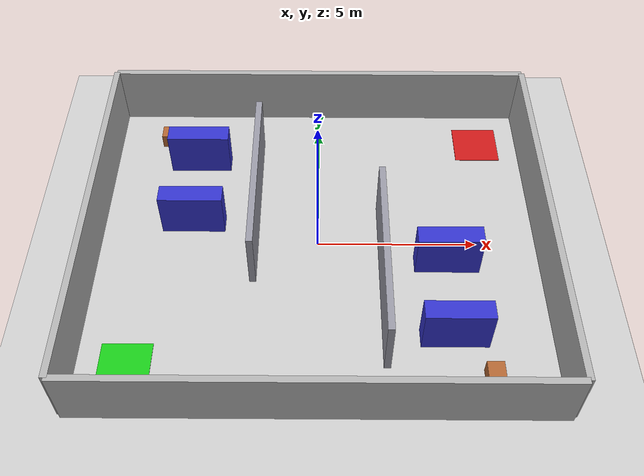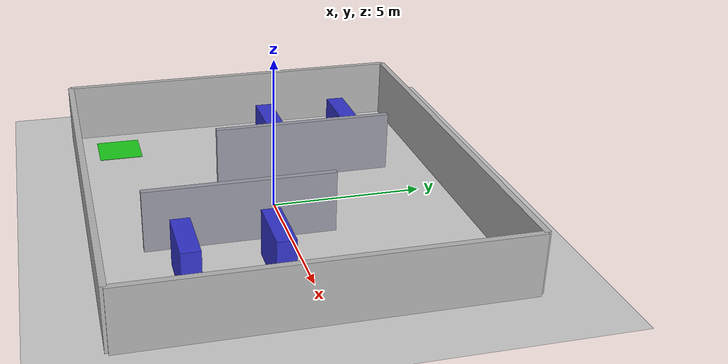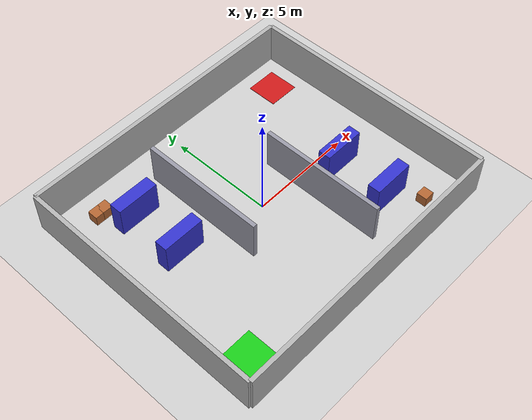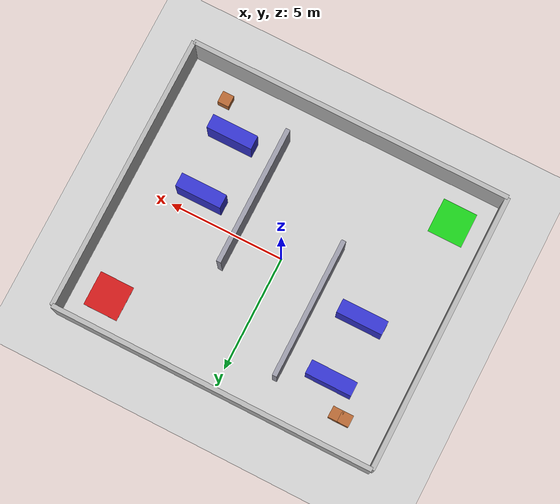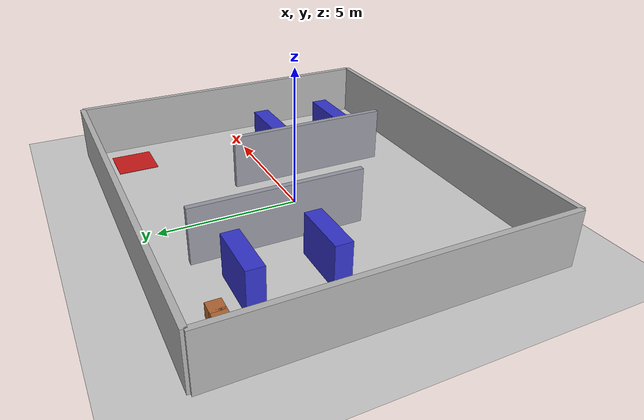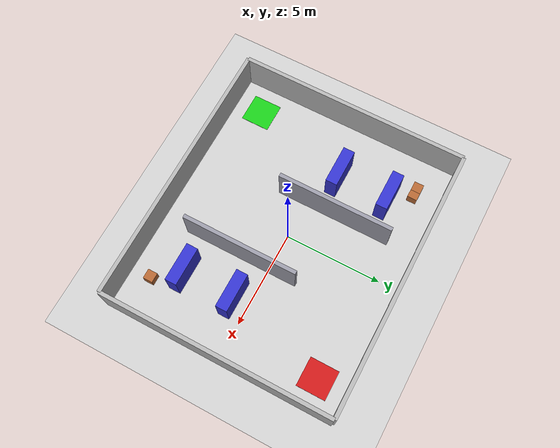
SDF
<?xml version="1.0" ?>
<sdf version="1.6">
  <world name="factory_world">

    <include>
      <uri>model://ground_plane</uri>
    </include>

    <include>
      <uri>model://sun</uri>
    </include>

    <!-- ================= LIGHT ================= -->
    <scene>
      <ambient>0.5 0.5 0.5 1</ambient>
      <background>0.7 0.7 0.7 1</background>
    </scene>

    <!-- ================= MAIN FLOOR AREA ================= -->
    <!-- outer walls -->
    <model name="wall_north">
      <static>true</static>
      <pose>0 6 1 0 0 0</pose>
      <link name="link">
        <collision name="collision">
          <geometry>
            <box><size>14 0.2 2</size></box>
          </geometry>
        </collision>
        <visual name="visual">
          <geometry>
            <box><size>14 0.2 2</size></box>
          </geometry>
          <material>
            <ambient>0.7 0.7 0.7 1</ambient>
            <diffuse>0.7 0.7 0.7 1</diffuse>
          </material>
        </visual>
      </link>
    </model>

    <model name="wall_south">
      <static>true</static>
      <pose>0 -6 1 0 0 0</pose>
      <link name="link">
        <collision name="collision">
          <geometry>
            <box><size>14 0.2 2</size></box>
          </geometry>
        </collision>
        <visual name="visual">
          <geometry>
            <box><size>14 0.2 2</size></box>
          </geometry>
          <material>
            <ambient>0.7 0.7 0.7 1</ambient>
            <diffuse>0.7 0.7 0.7 1</diffuse>
          </material>
        </visual>
      </link>
    </model>

    <model name="wall_east">
      <static>true</static>
      <pose>7 0 1 0 0 0</pose>
      <link name="link">
        <collision name="collision">
          <geometry>
            <box><size>0.2 12 2</size></box>
          </geometry>
        </collision>
        <visual name="visual">
          <geometry>
            <box><size>0.2 12 2</size></box>
          </geometry>
          <material>
            <ambient>0.7 0.7 0.7 1</ambient>
            <diffuse>0.7 0.7 0.7 1</diffuse>
          </material>
        </visual>
      </link>
    </model>

    <model name="wall_west">
      <static>true</static>
      <pose>-7 0 1 0 0 0</pose>
      <link name="link">
        <collision name="collision">
          <geometry>
            <box><size>0.2 12 2</size></box>
          </geometry>
        </collision>
        <visual name="visual">
          <geometry>
            <box><size>0.2 12 2</size></box>
          </geometry>
          <material>
            <ambient>0.7 0.7 0.7 1</ambient>
            <diffuse>0.7 0.7 0.7 1</diffuse>
          </material>
        </visual>
      </link>
    </model>

    <!-- ================= INNER WALLS / CORRIDORS ================= -->
    <model name="inner_wall_1">
      <static>true</static>
      <pose>-2 1.5 1 0 0 0</pose>
      <link name="link">
        <collision name="collision">
          <geometry>
            <box><size>0.2 6 2</size></box>
          </geometry>
        </collision>
        <visual name="visual">
          <geometry>
            <box><size>0.2 6 2</size></box>
          </geometry>
          <material>
            <ambient>0.6 0.6 0.65 1</ambient>
            <diffuse>0.6 0.6 0.65 1</diffuse>
          </material>
        </visual>
      </link>
    </model>

    <model name="inner_wall_2">
      <static>true</static>
      <pose>2 -1.5 1 0 0 0</pose>
      <link name="link">
        <collision name="collision">
          <geometry>
            <box><size>0.2 6 2</size></box>
          </geometry>
        </collision>
        <visual name="visual">
          <geometry>
            <box><size>0.2 6 2</size></box>
          </geometry>
          <material>
            <ambient>0.6 0.6 0.65 1</ambient>
            <diffuse>0.6 0.6 0.65 1</diffuse>
          </material>
        </visual>
      </link>
    </model>

    <!-- ================= SHELVES ================= -->
    <model name="shelf_1">
      <static>true</static>
      <pose>-4 3.5 0.75 0 0 0</pose>
      <link name="link">
        <collision name="collision">
          <geometry>
            <box><size>2 0.6 1.5</size></box>
          </geometry>
        </collision>
        <visual name="visual">
          <geometry>
            <box><size>2 0.6 1.5</size></box>
          </geometry>
          <material>
            <ambient>0.2 0.2 0.8 1</ambient>
            <diffuse>0.2 0.2 0.8 1</diffuse>
          </material>
        </visual>
      </link>
    </model>

    <model name="shelf_2">
      <static>true</static>
      <pose>-4 0.8 0.75 0 0 0</pose>
      <link name="link">
        <collision name="collision">
          <geometry>
            <box><size>2 0.6 1.5</size></box>
          </geometry>
        </collision>
        <visual name="visual">
          <geometry>
            <box><size>2 0.6 1.5</size></box>
          </geometry>
          <material>
            <ambient>0.2 0.2 0.8 1</ambient>
            <diffuse>0.2 0.2 0.8 1</diffuse>
          </material>
        </visual>
      </link>
    </model>

    <model name="shelf_3">
      <static>true</static>
      <pose>4 -0.8 0.75 0 0 0</pose>
      <link name="link">
        <collision name="collision">
          <geometry>
            <box><size>2 0.6 1.5</size></box>
          </geometry>
        </collision>
        <visual name="visual">
          <geometry>
            <box><size>2 0.6 1.5</size></box>
          </geometry>
          <material>
            <ambient>0.2 0.2 0.8 1</ambient>
            <diffuse>0.2 0.2 0.8 1</diffuse>
          </material>
        </visual>
      </link>
    </model>

    <model name="shelf_4">
      <static>true</static>
      <pose>4 -3.5 0.75 0 0 0</pose>
      <link name="link">
        <collision name="collision">
          <geometry>
            <box><size>2 0.6 1.5</size></box>
          </geometry>
        </collision>
        <visual name="visual">
          <geometry>
            <box><size>2 0.6 1.5</size></box>
          </geometry>
          <material>
            <ambient>0.2 0.2 0.8 1</ambient>
            <diffuse>0.2 0.2 0.8 1</diffuse>
          </material>
        </visual>
      </link>
    </model>

    <!-- ================= BOXES ================= -->
    <model name="box_1">
      <static>true</static>
      <pose>-5.2 4.6 0.25 0 0 0</pose>
      <link name="link">
        <collision name="collision">
          <geometry>
            <box><size>0.5 0.5 0.5</size></box>
          </geometry>
        </collision>
        <visual name="visual">
          <geometry>
            <box><size>0.5 0.5 0.5</size></box>
          </geometry>
          <material>
            <ambient>0.7 0.4 0.2 1</ambient>
            <diffuse>0.7 0.4 0.2 1</diffuse>
          </material>
        </visual>
      </link>
    </model>

    <model name="box_2">
      <static>true</static>
      <pose>-4.8 4.6 0.25 0 0 0</pose>
      <link name="link">
        <collision name="collision">
          <geometry>
            <box><size>0.5 0.5 0.5</size></box>
          </geometry>
        </collision>
        <visual name="visual">
          <geometry>
            <box><size>0.5 0.5 0.5</size></box>
          </geometry>
          <material>
            <ambient>0.7 0.4 0.2 1</ambient>
            <diffuse>0.7 0.4 0.2 1</diffuse>
          </material>
        </visual>
      </link>
    </model>

    <model name="box_3">
      <static>true</static>
      <pose>5.0 -4.8 0.25 0 0 0</pose>
      <link name="link">
        <collision name="collision">
          <geometry>
            <box><size>0.5 0.5 0.5</size></box>
          </geometry>
        </collision>
        <visual name="visual">
          <geometry>
            <box><size>0.5 0.5 0.5</size></box>
          </geometry>
          <material>
            <ambient>0.7 0.4 0.2 1</ambient>
            <diffuse>0.7 0.4 0.2 1</diffuse>
          </material>
        </visual>
      </link>
    </model>

    <!-- ================= LOADING AREA ================= -->
    <model name="loading_zone">
      <static>true</static>
      <pose>-5.5 -4.5 0.01 0 0 0</pose>
      <link name="link">
        <visual name="visual">
          <geometry>
            <box><size>1.5 1.5 0.02</size></box>
          </geometry>
          <material>
            <ambient>0.1 0.8 0.1 1</ambient>
            <diffuse>0.1 0.8 0.1 1</diffuse>
          </material>
        </visual>
      </link>
    </model>

    <!-- ================= DELIVERY AREA ================= -->
    <model name="delivery_zone">
      <static>true</static>
      <pose>5.5 4.5 0.01 0 0 0</pose>
      <link name="link">
        <visual name="visual">
          <geometry>
            <box><size>1.5 1.5 0.02</size></box>
          </geometry>
          <material>
            <ambient>0.8 0.1 0.1 1</ambient>
            <diffuse>0.8 0.1 0.1 1</diffuse>
          </material>
        </visual>
      </link>
    </model>

  </world>
</sdf>
